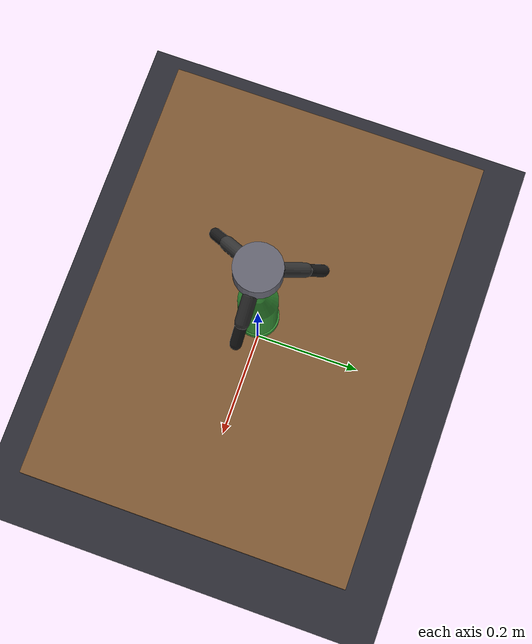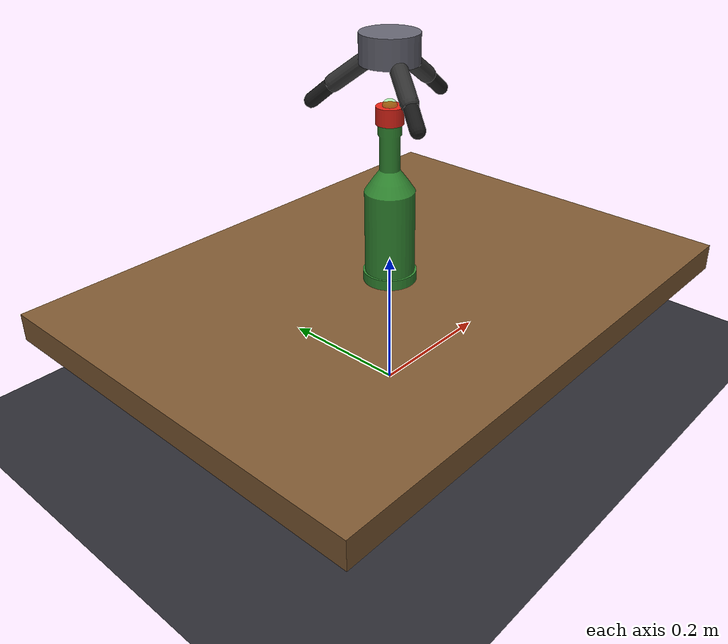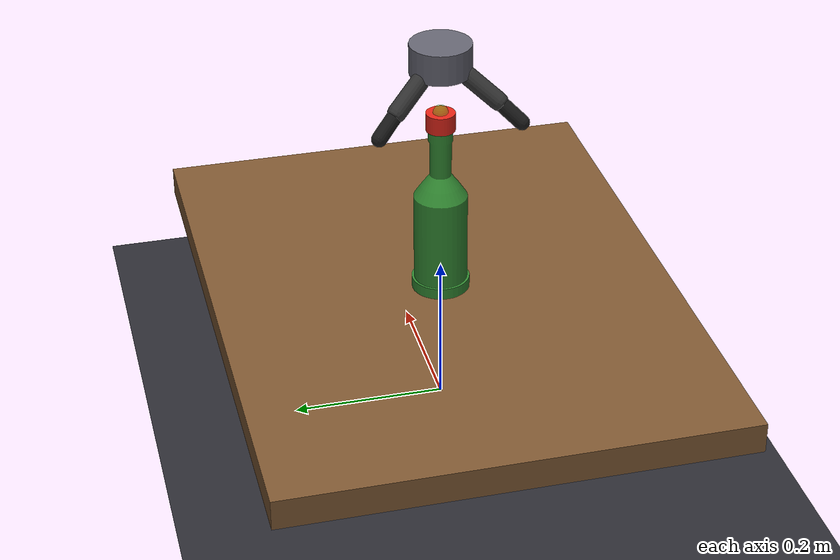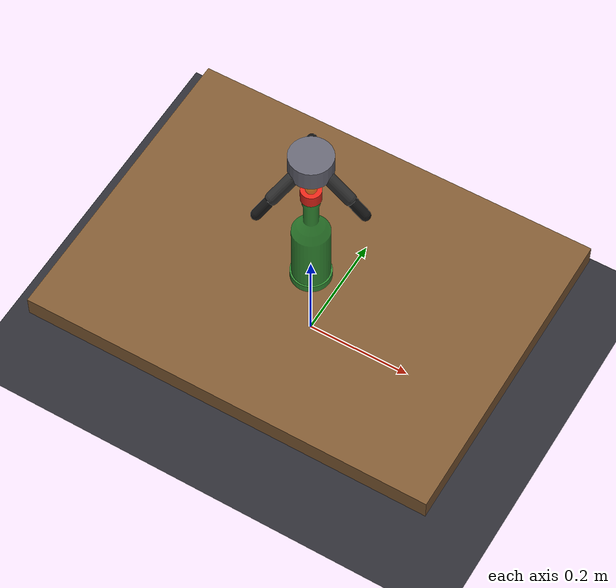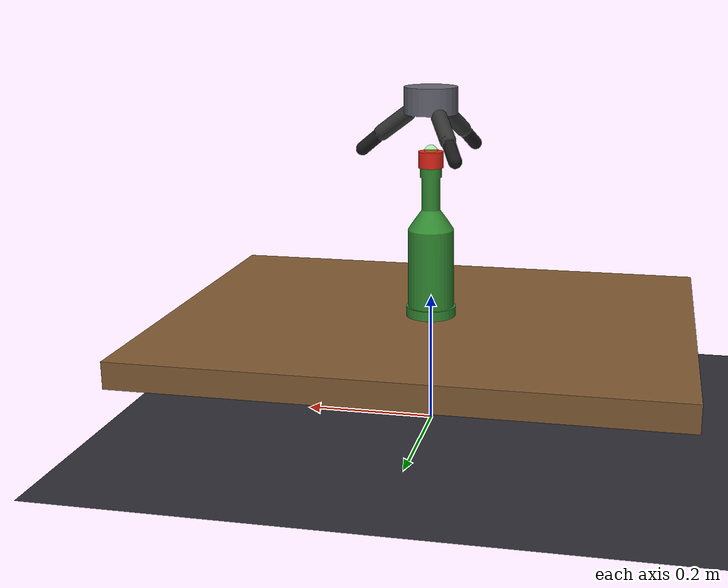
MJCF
<mujoco model="bottle_cap">
  <compiler angle="radian" autolimits="true" meshdir="../meshes/"/>

  <option gravity="0 0 -9.81" timestep="0.002">
    <flag warmstart="enable"/>
  </option>

  <default>
    <joint damping="0.5" armature="0.01"/>
    <geom friction="1.0 0.5 0.5" condim="4" contype="1" conaffinity="1"/>
    <position kp="20" kv="2"/>
  </default>

  <asset>
    <texture type="skybox" builtin="gradient" rgb1="0.4 0.5 0.6" rgb2="0.1 0.1 0.15" width="512" height="512"/>
    <texture name="wood" type="2d" builtin="flat" rgb1="0.5 0.35 0.2" rgb2="0.45 0.3 0.18" width="512" height="512"/>
    <texture name="grid" type="2d" builtin="checker" rgb1="0.15 0.15 0.18" rgb2="0.2 0.2 0.23" width="512" height="512"/>

    <material name="table" texture="wood" texrepeat="4 4"/>
    <material name="floor" texture="grid" texrepeat="10 10"/>
    <material name="gripper_metal" rgba="0.4 0.4 0.45 1"/>
    <material name="finger_rubber" rgba="0.2 0.2 0.2 1"/>
    <material name="finger_tip" rgba="0.1 0.1 0.1 1"/>

    <!-- Bottle materials -->
    <material name="bottle_glass" rgba="0.2 0.55 0.2 0.9" specular="0.95" shininess="0.98"/>
    <material name="bottle_cap" rgba="0.9 0.15 0.1 1" specular="0.4" shininess="0.6"/>

    <!-- Meshes -->
    <mesh name="bottle_mesh" file="bottle.stl"/>
    <mesh name="cap_mesh" file="cap.stl"/>
  </asset>

  <worldbody>
    <!-- Ground and table -->
    <geom name="floor" type="plane" size="1 1 0.1" material="floor" pos="0 0 0"/>
    <geom name="table" type="box" size="0.4 0.3 0.02" pos="0 0 0.15" material="table"/>

    <!-- Bottle with mesh (fixed to table) -->
    <body name="bottle" pos="0 0 0.17">
      <geom name="bottle_body" type="mesh" mesh="bottle_mesh" material="bottle_glass"/>

      <!-- Cap (rotates and lifts off bottle) - positioned at top of bottle -->
      <body name="cap" pos="0 0 0.23">
        <joint name="cap_rotation" type="hinge" axis="0 0 1" range="0 9.42" damping="0.3"/>
        <joint name="cap_lift" type="slide" axis="0 0 1" range="0 0.04" damping="2" stiffness="80"/>

        <geom name="cap_body" type="mesh" mesh="cap_mesh" material="bottle_cap" mass="0.008"/>
        <site name="cap_site" pos="0 0 0.024" size="0.01" rgba="0 1 0 0.3"/>
      </body>

      <site name="bottle_top" pos="0 0 0.23" size="0.005" rgba="0 0 1 0.3"/>
    </body>

    <!-- Robotiq-style 3-Finger Gripper -->
    <body name="gripper_base" pos="0 0 0.5">
      <joint name="base_x" type="slide" axis="1 0 0" range="-0.3 0.3" damping="5"/>
      <joint name="base_y" type="slide" axis="0 1 0" range="-0.3 0.3" damping="5"/>
      <joint name="base_z" type="slide" axis="0 0 1" range="0.3 0.65" damping="5"/>
      <joint name="base_roll" type="hinge" axis="1 0 0" range="-3.14 3.14" damping="1"/>
      <joint name="base_pitch" type="hinge" axis="0 1 0" range="-1.57 1.57" damping="1"/>
      <joint name="base_yaw" type="hinge" axis="0 0 1" range="-3.14 3.14" damping="1"/>

      <geom name="palm" type="cylinder" size="0.04 0.02" material="gripper_metal"/>

      <!-- Finger A -->
      <body name="finger_a_proximal" pos="0.035 0 -0.02">
        <joint name="finger_a_base" type="hinge" axis="0 1 0" range="-0.2 1.4"/>
        <geom name="finger_a_prox" type="capsule" fromto="0 0 0 0.04 0 -0.03" size="0.012" material="finger_rubber"/>
        <body name="finger_a_distal" pos="0.04 0 -0.03">
          <joint name="finger_a_tip" type="hinge" axis="0 1 0" range="-0.4 1.2"/>
          <geom name="finger_a_dist" type="capsule" fromto="0 0 0 0.03 0 -0.025" size="0.01" material="finger_tip"/>
          <site name="finger_a_site" pos="0.03 0 -0.025" size="0.005"/>
        </body>
      </body>

      <!-- Finger B -->
      <body name="finger_b_proximal" pos="-0.0175 0.0303 -0.02" euler="0 0 2.094">
        <joint name="finger_b_base" type="hinge" axis="0 1 0" range="-0.2 1.4"/>
        <geom name="finger_b_prox" type="capsule" fromto="0 0 0 0.04 0 -0.03" size="0.012" material="finger_rubber"/>
        <body name="finger_b_distal" pos="0.04 0 -0.03">
          <joint name="finger_b_tip" type="hinge" axis="0 1 0" range="-0.4 1.2"/>
          <geom name="finger_b_dist" type="capsule" fromto="0 0 0 0.03 0 -0.025" size="0.01" material="finger_tip"/>
          <site name="finger_b_site" pos="0.03 0 -0.025" size="0.005"/>
        </body>
      </body>

      <!-- Finger C -->
      <body name="finger_c_proximal" pos="-0.0175 -0.0303 -0.02" euler="0 0 -2.094">
        <joint name="finger_c_base" type="hinge" axis="0 1 0" range="-0.2 1.4"/>
        <geom name="finger_c_prox" type="capsule" fromto="0 0 0 0.04 0 -0.03" size="0.012" material="finger_rubber"/>
        <body name="finger_c_distal" pos="0.04 0 -0.03">
          <joint name="finger_c_tip" type="hinge" axis="0 1 0" range="-0.4 1.2"/>
          <geom name="finger_c_dist" type="capsule" fromto="0 0 0 0.03 0 -0.025" size="0.01" material="finger_tip"/>
          <site name="finger_c_site" pos="0.03 0 -0.025" size="0.005"/>
        </body>
      </body>
    </body>
  </worldbody>

  <actuator>
    <position name="act_base_x" joint="base_x" kp="100" ctrlrange="-0.3 0.3"/>
    <position name="act_base_y" joint="base_y" kp="100" ctrlrange="-0.3 0.3"/>
    <position name="act_base_z" joint="base_z" kp="100" ctrlrange="0.3 0.65"/>
    <position name="act_base_roll" joint="base_roll" kp="50" ctrlrange="-3.14 3.14"/>
    <position name="act_base_pitch" joint="base_pitch" kp="50" ctrlrange="-1.57 1.57"/>
    <position name="act_base_yaw" joint="base_yaw" kp="50" ctrlrange="-3.14 3.14"/>
    <position name="act_finger_a_base" joint="finger_a_base" kp="10" ctrlrange="-0.2 1.4"/>
    <position name="act_finger_a_tip" joint="finger_a_tip" kp="5" ctrlrange="-0.4 1.2"/>
    <position name="act_finger_b_base" joint="finger_b_base" kp="10" ctrlrange="-0.2 1.4"/>
    <position name="act_finger_b_tip" joint="finger_b_tip" kp="5" ctrlrange="-0.4 1.2"/>
    <position name="act_finger_c_base" joint="finger_c_base" kp="10" ctrlrange="-0.2 1.4"/>
    <position name="act_finger_c_tip" joint="finger_c_tip" kp="5" ctrlrange="-0.4 1.2"/>
  </actuator>

  <sensor>
    <touch name="finger_a_touch" site="finger_a_site"/>
    <touch name="finger_b_touch" site="finger_b_site"/>
    <touch name="finger_c_touch" site="finger_c_site"/>
  </sensor>
</mujoco>
